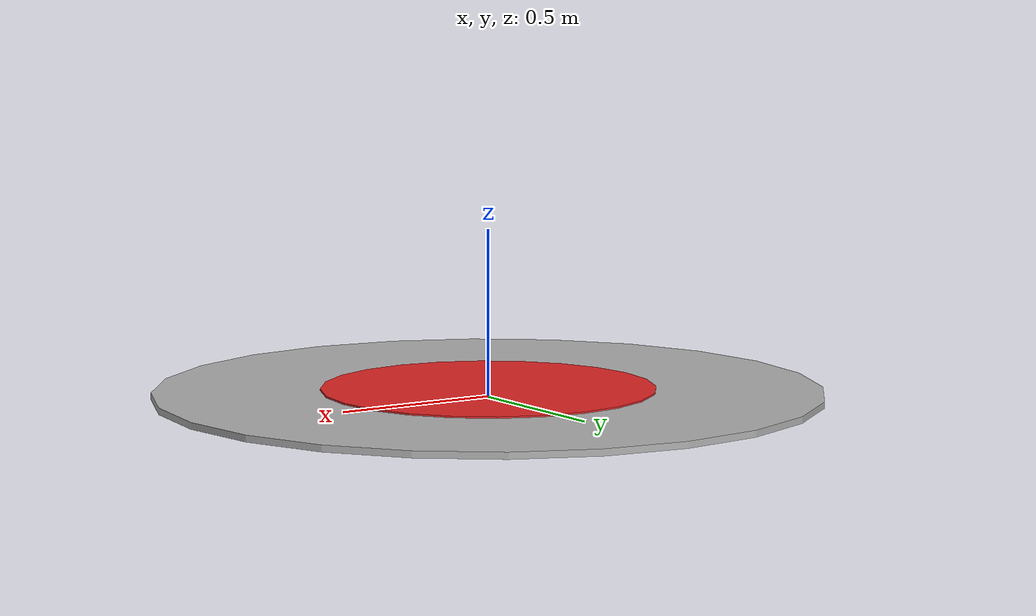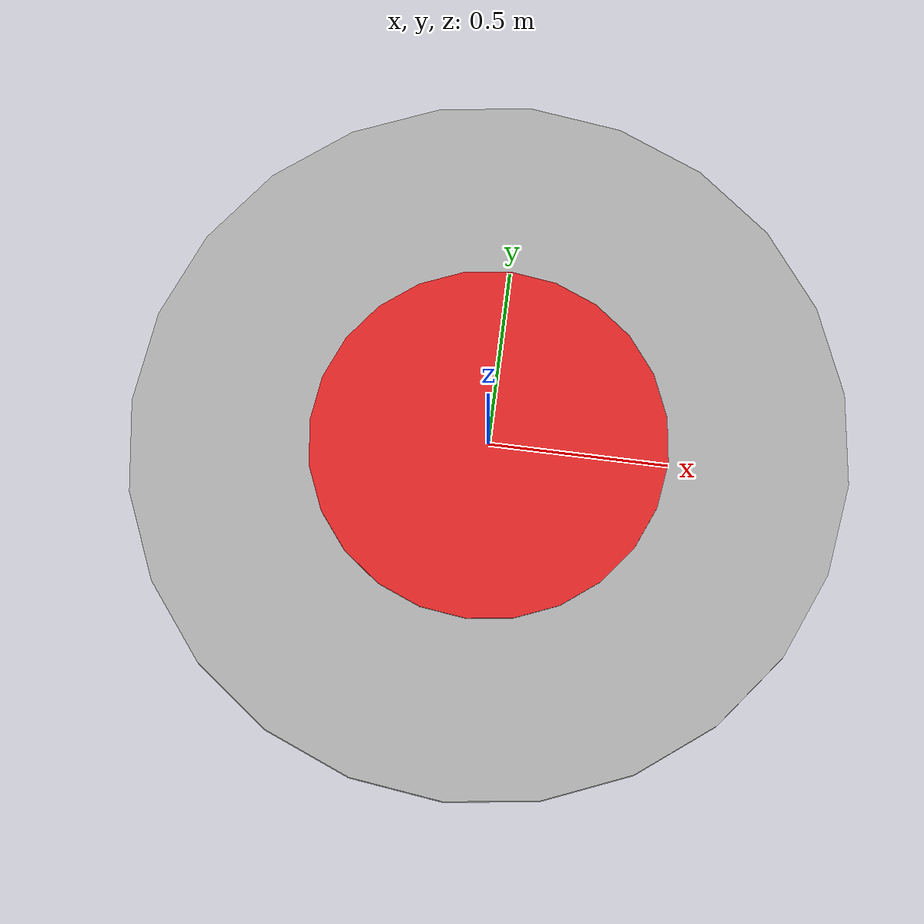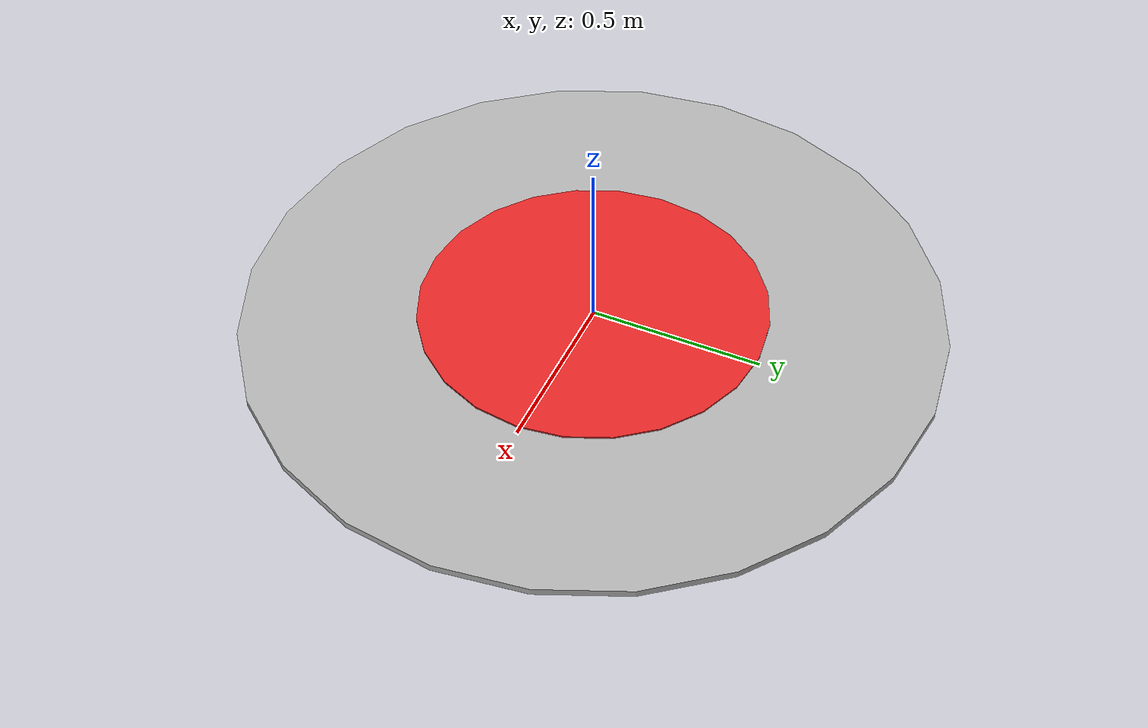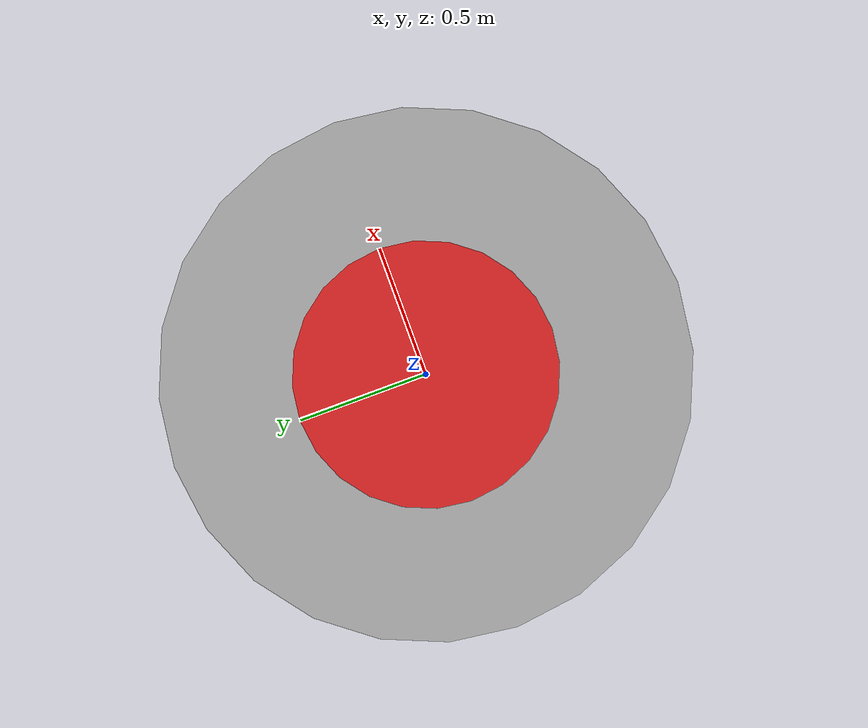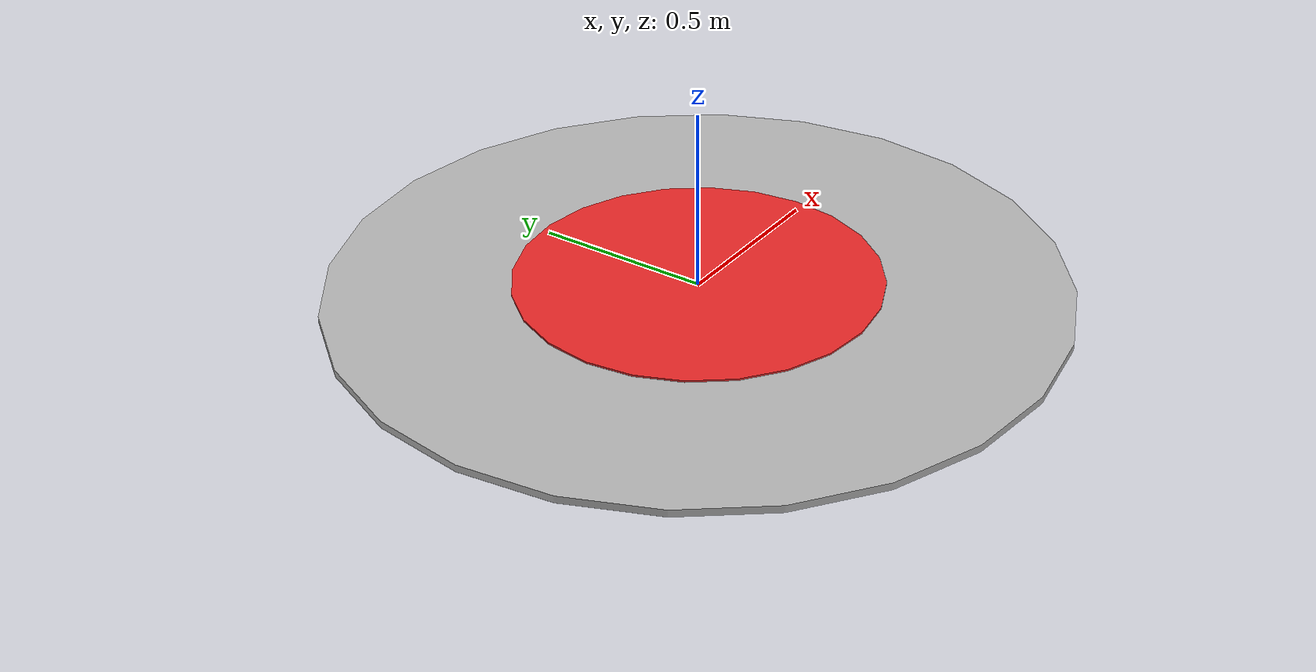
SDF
<?xml version='1.0'?>
<sdf version='1.6'>
  <model name='landing_pad'>
    <static>true</static>

    <link name='pad_base'>
      <pose>0 0 0.01 0 0 0</pose>
      <collision name='collision'>
        <geometry>
          <cylinder><radius>1.0</radius><length>0.02</length></cylinder>
        </geometry>
      </collision>
      <visual name='visual'>
        <geometry>
          <cylinder><radius>1.0</radius><length>0.02</length></cylinder>
        </geometry>
        <material>
          <ambient>0.6 0.6 0.6 1</ambient>
          <diffuse>0.7 0.7 0.7 1</diffuse>
        </material>
      </visual>
    </link>

    <link name='red_target'>
      <pose>0 0 0.025 0 0 0</pose>
      <visual name='visual'>
        <geometry>
          <cylinder><radius>0.5</radius><length>0.005</length></cylinder>
        </geometry>
        <material>
          <ambient>0.8 0.1 0.1 1</ambient>
          <diffuse>0.9 0.15 0.15 1</diffuse>
          <emissive>0.4 0.0 0.0 1</emissive>
        </material>
      </visual>
    </link>

    <joint name='target_joint' type='fixed'>
      <parent>pad_base</parent>
      <child>red_target</child>
    </joint>
  </model>
</sdf>
